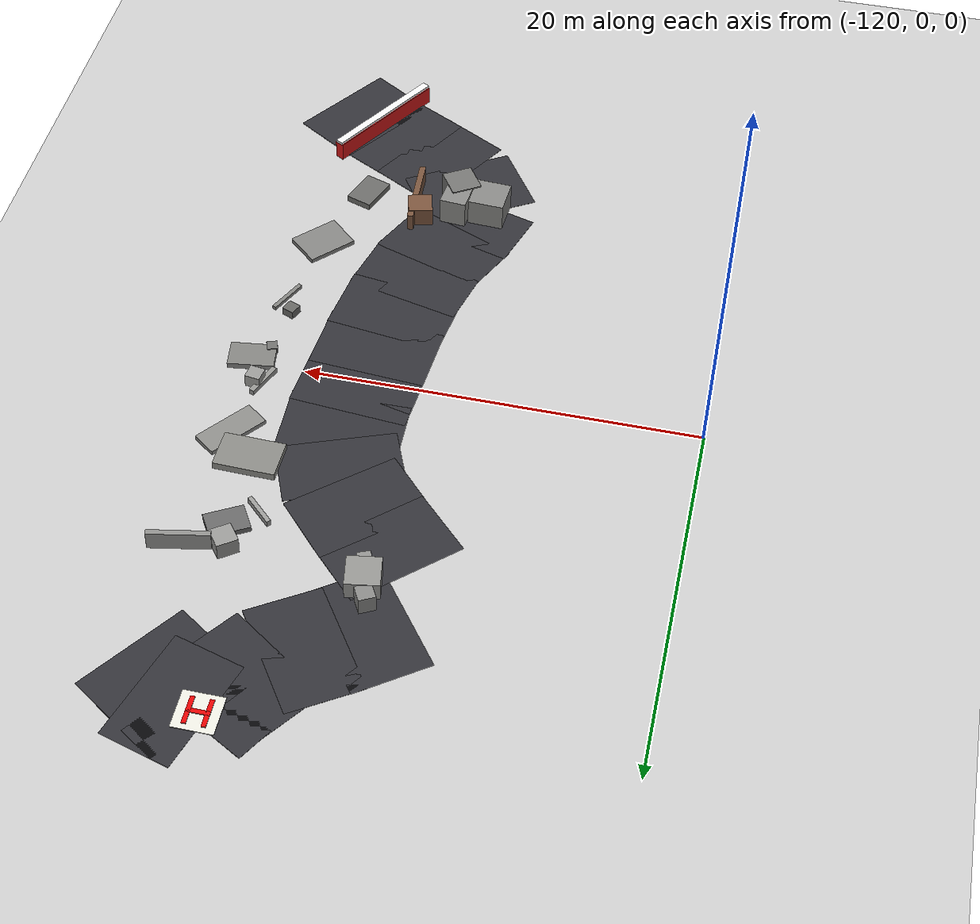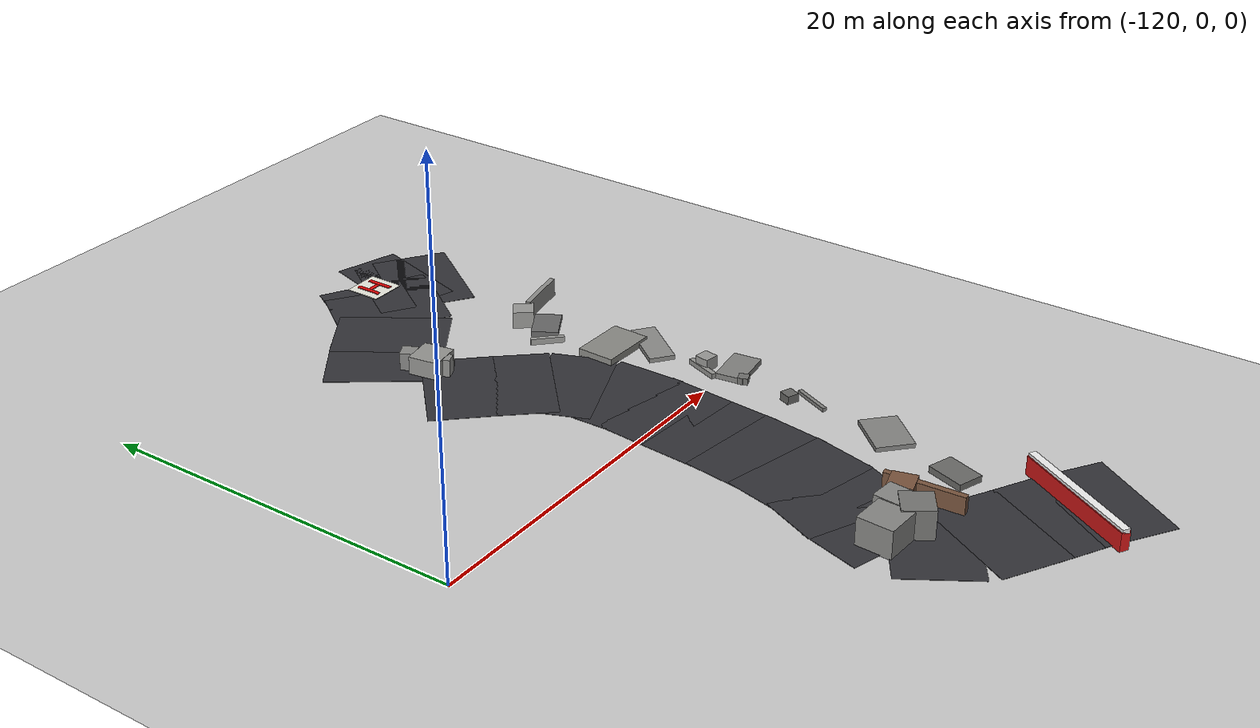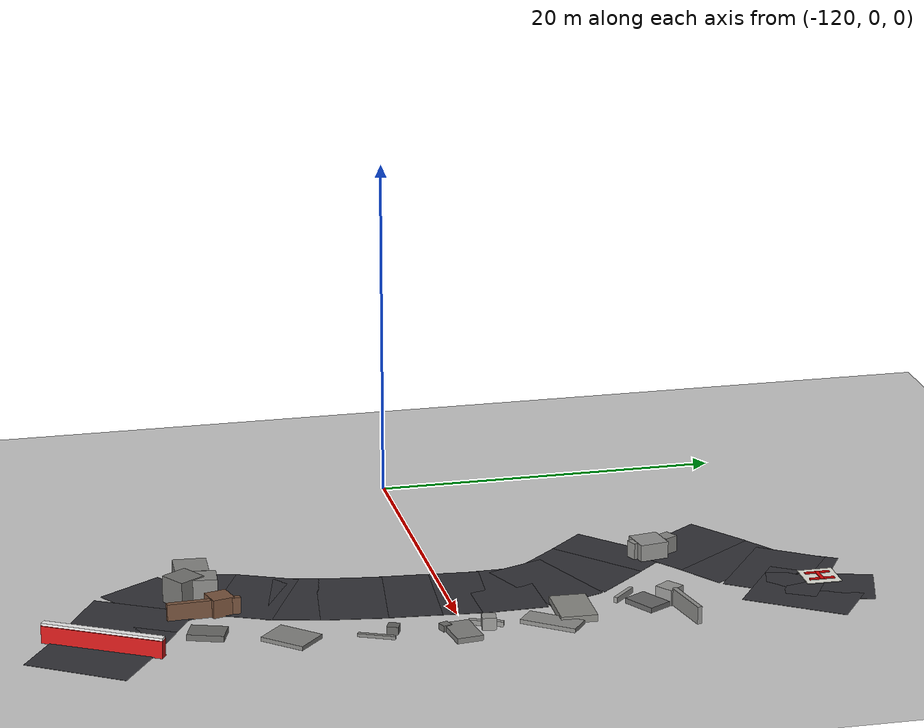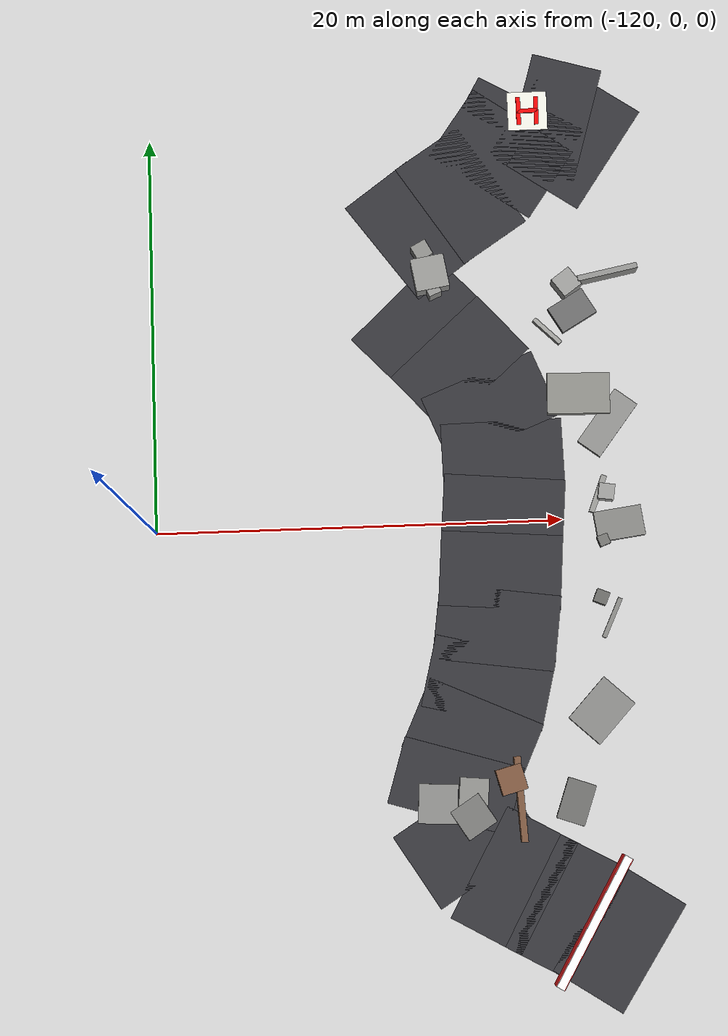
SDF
<sdf version="1.6">
 <world name="navitas_arena">
  <model name="ground_plane">
   <static>true</static>
   <link name="link">
    <collision name="collision">
     <geometry><plane><normal>0 0 1</normal><size>400 400</size></plane></geometry>
     <surface><friction><ode><mu>0.8</mu><mu2>0.8</mu2></ode></friction></surface>
    </collision>
    <visual name="visual">
     <cast_shadows>false</cast_shadows>
     <geometry><plane><normal>0 0 1</normal><size>400 400</size></plane></geometry>
     <material>
      <script><uri>file://media/materials/scripts/gazebo.material</uri><name>Gazebo/Grey</name></script>
     </material>
    </visual>
   </link>
  </model>
  <model name="road_kolay_1_1">
   <static>true</static>
   <pose>-98.136 -20.320 0.040 0 0 2.562</pose>
   <link name="link">
    <collision name="col"><geometry><box><size>3.894 6.000 0.020</size></box></geometry></collision>
    <visual name="vis">
     <geometry><box><size>3.894 6.000 0.020</size></box></geometry>
     <material><ambient>0.20 0.20 0.22 1</ambient><diffuse>0.20 0.20 0.22 1</diffuse></material>
    </visual>
   </link>
  </model>
  <model name="road_kolay_1_2">
   <static>true</static>
   <pose>-100.596 -18.833 0.040 0 0 2.637</pose>
   <link name="link">
    <collision name="col"><geometry><box><size>3.659 6.000 0.020</size></box></geometry></collision>
    <visual name="vis">
     <geometry><box><size>3.659 6.000 0.020</size></box></geometry>
     <material><ambient>0.20 0.20 0.22 1</ambient><diffuse>0.20 0.20 0.22 1</diffuse></material>
    </visual>
   </link>
  </model>
  <model name="road_kolay_1_3">
   <static>true</static>
   <pose>-103.075 -17.444 0.040 0 0 2.625</pose>
   <link name="link">
    <collision name="col"><geometry><box><size>3.823 6.000 0.020</size></box></geometry></collision>
    <visual name="vis">
     <geometry><box><size>3.823 6.000 0.020</size></box></geometry>
     <material><ambient>0.20 0.20 0.22 1</ambient><diffuse>0.20 0.20 0.22 1</diffuse></material>
    </visual>
   </link>
  </model>
  <model name="road_kolay_1_4">
   <static>true</static>
   <pose>-105.210 -15.350 0.040 0 0 2.133</pose>
   <link name="link">
    <collision name="col"><geometry><box><size>4.143 6.000 0.020</size></box></geometry></collision>
    <visual name="vis">
     <geometry><box><size>4.143 6.000 0.020</size></box></geometry>
     <material><ambient>0.20 0.20 0.22 1</ambient><diffuse>0.20 0.20 0.22 1</diffuse></material>
    </visual>
   </link>
  </model>
  <model name="road_kolay_1_5">
   <static>true</static>
   <pose>-105.721 -12.817 0.040 0 0 1.276</pose>
   <link name="link">
    <collision name="col"><geometry><box><size>3.327 6.000 0.020</size></box></geometry></collision>
    <visual name="vis">
     <geometry><box><size>3.327 6.000 0.020</size></box></geometry>
     <material><ambient>0.20 0.20 0.22 1</ambient><diffuse>0.20 0.20 0.22 1</diffuse></material>
    </visual>
   </link>
  </model>
  <model name="road_kolay_1_6">
   <static>true</static>
   <pose>-104.809 -10.426 0.040 0 0 1.144</pose>
   <link name="link">
    <collision name="col"><geometry><box><size>3.603 6.000 0.020</size></box></geometry></collision>
    <visual name="vis">
     <geometry><box><size>3.603 6.000 0.020</size></box></geometry>
     <material><ambient>0.20 0.20 0.22 1</ambient><diffuse>0.20 0.20 0.22 1</diffuse></material>
    </visual>
   </link>
  </model>
  <model name="road_kolay_1_7">
   <static>true</static>
   <pose>-103.930 -7.898 0.040 0 0 1.329</pose>
   <link name="link">
    <collision name="col"><geometry><box><size>3.574 6.000 0.020</size></box></geometry></collision>
    <visual name="vis">
     <geometry><box><size>3.574 6.000 0.020</size></box></geometry>
     <material><ambient>0.20 0.20 0.22 1</ambient><diffuse>0.20 0.20 0.22 1</diffuse></material>
    </visual>
   </link>
  </model>
  <model name="road_kolay_1_8">
   <static>true</static>
   <pose>-103.414 -5.200 0.040 0 0 1.432</pose>
   <link name="link">
    <collision name="col"><geometry><box><size>3.727 6.000 0.020</size></box></geometry></collision>
    <visual name="vis">
     <geometry><box><size>3.727 6.000 0.020</size></box></geometry>
     <material><ambient>0.20 0.20 0.22 1</ambient><diffuse>0.20 0.20 0.22 1</diffuse></material>
    </visual>
   </link>
  </model>
  <model name="road_kolay_1_9">
   <static>true</static>
   <pose>-103.110 -2.400 0.040 0 0 1.493</pose>
   <link name="link">
    <collision name="col"><geometry><box><size>3.708 6.000 0.020</size></box></geometry></collision>
    <visual name="vis">
     <geometry><box><size>3.708 6.000 0.020</size></box></geometry>
     <material><ambient>0.20 0.20 0.22 1</ambient><diffuse>0.20 0.20 0.22 1</diffuse></material>
    </visual>
   </link>
  </model>
  <model name="road_kolay_1_10">
   <static>true</static>
   <pose>-102.878 0.400 0.040 0 0 1.483</pose>
   <link name="link">
    <collision name="col"><geometry><box><size>3.711 6.000 0.020</size></box></geometry></collision>
    <visual name="vis">
     <geometry><box><size>3.711 6.000 0.020</size></box></geometry>
     <material><ambient>0.20 0.20 0.22 1</ambient><diffuse>0.20 0.20 0.22 1</diffuse></material>
    </visual>
   </link>
  </model>
  <model name="road_kolay_1_11">
   <static>true</static>
   <pose>-102.781 3.200 0.040 0 0 1.590</pose>
   <link name="link">
    <collision name="col"><geometry><box><size>3.701 6.000 0.020</size></box></geometry></collision>
    <visual name="vis">
     <geometry><box><size>3.701 6.000 0.020</size></box></geometry>
     <material><ambient>0.20 0.20 0.22 1</ambient><diffuse>0.20 0.20 0.22 1</diffuse></material>
    </visual>
   </link>
  </model>
  <model name="road_kolay_1_12">
   <static>true</static>
   <pose>-103.290 5.811 0.040 0 0 1.950</pose>
   <link name="link">
    <collision name="col"><geometry><box><size>3.507 6.000 0.020</size></box></geometry></collision>
    <visual name="vis">
     <geometry><box><size>3.507 6.000 0.020</size></box></geometry>
     <material><ambient>0.20 0.20 0.22 1</ambient><diffuse>0.20 0.20 0.22 1</diffuse></material>
    </visual>
   </link>
  </model>
  <model name="road_kolay_1_13">
   <static>true</static>
   <pose>-104.719 8.077 0.040 0 0 2.302</pose>
   <link name="link">
    <collision name="col"><geometry><box><size>3.734 6.000 0.020</size></box></geometry></collision>
    <visual name="vis">
     <geometry><box><size>3.734 6.000 0.020</size></box></geometry>
     <material><ambient>0.20 0.20 0.22 1</ambient><diffuse>0.20 0.20 0.22 1</diffuse></material>
    </visual>
   </link>
  </model>
  <model name="road_kolay_1_14">
   <static>true</static>
   <pose>-106.637 10.157 0.040 0 0 2.329</pose>
   <link name="link">
    <collision name="col"><geometry><box><size>3.725 6.000 0.020</size></box></geometry></collision>
    <visual name="vis">
     <geometry><box><size>3.725 6.000 0.020</size></box></geometry>
     <material><ambient>0.20 0.20 0.22 1</ambient><diffuse>0.20 0.20 0.22 1</diffuse></material>
    </visual>
   </link>
  </model>
  <model name="road_kolay_1_16">
   <static>true</static>
   <pose>-106.818 14.984 0.040 0 0 0.632</pose>
   <link name="link">
    <collision name="col"><geometry><box><size>3.976 6.000 0.020</size></box></geometry></collision>
    <visual name="vis">
     <geometry><box><size>3.976 6.000 0.020</size></box></geometry>
     <material><ambient>0.20 0.20 0.22 1</ambient><diffuse>0.20 0.20 0.22 1</diffuse></material>
    </visual>
   </link>
  </model>
  <model name="road_kolay_1_17">
   <static>true</static>
   <pose>-104.358 16.696 0.040 0 0 0.583</pose>
   <link name="link">
    <collision name="col"><geometry><box><size>3.820 6.000 0.020</size></box></geometry></collision>
    <visual name="vis">
     <geometry><box><size>3.820 6.000 0.020</size></box></geometry>
     <material><ambient>0.20 0.20 0.22 1</ambient><diffuse>0.20 0.20 0.22 1</diffuse></material>
    </visual>
   </link>
  </model>
  <model name="road_kolay_1_18">
   <static>true</static>
   <pose>-102.217 18.815 0.040 0 0 0.959</pose>
   <link name="link">
    <collision name="col"><geometry><box><size>4.113 6.000 0.020</size></box></geometry></collision>
    <visual name="vis">
     <geometry><box><size>4.113 6.000 0.020</size></box></geometry>
     <material><ambient>0.20 0.20 0.22 1</ambient><diffuse>0.20 0.20 0.22 1</diffuse></material>
    </visual>
   </link>
  </model>
  <model name="road_kolay_1_19">
   <static>true</static>
   <pose>-101.046 20.565 0.040 0 0 1.054</pose>
   <link name="link">
    <collision name="col"><geometry><box><size>1.901 6.000 0.020</size></box></geometry></collision>
    <visual name="vis">
     <geometry><box><size>1.901 6.000 0.020</size></box></geometry>
     <material><ambient>0.20 0.20 0.22 1</ambient><diffuse>0.20 0.20 0.22 1</diffuse></material>
    </visual>
   </link>
  </model>
  <model name="road_kolay_2_17">
   <static>true</static>
   <pose>-98.530 19.461 0.040 0 0 2.541</pose>
   <link name="link">
    <collision name="col"><geometry><box><size>4.203 6.000 0.020</size></box></geometry></collision>
    <visual name="vis">
     <geometry><box><size>4.203 6.000 0.020</size></box></geometry>
     <material><ambient>0.20 0.20 0.22 1</ambient><diffuse>0.20 0.20 0.22 1</diffuse></material>
    </visual>
   </link>
  </model>
  <model name="road_kolay_2_18">
   <static>true</static>
   <pose>-100.345 20.697 0.040 0 0 2.553</pose>
   <link name="link">
    <collision name="col"><geometry><box><size>1.990 6.000 0.020</size></box></geometry></collision>
    <visual name="vis">
     <geometry><box><size>1.990 6.000 0.020</size></box></geometry>
     <material><ambient>0.20 0.20 0.22 1</ambient><diffuse>0.20 0.20 0.22 1</diffuse></material>
    </visual>
   </link>
  </model>
  <model name="road_kolay_3_28">
   <static>true</static>
   <pose>-99.500 20.619 0.040 0 0 2.857</pose>
   <link name="link">
    <collision name="col"><geometry><box><size>3.607 6.000 0.020</size></box></geometry></collision>
    <visual name="vis">
     <geometry><box><size>3.607 6.000 0.020</size></box></geometry>
     <material><ambient>0.20 0.20 0.22 1</ambient><diffuse>0.20 0.20 0.22 1</diffuse></material>
    </visual>
   </link>
  </model>
  <model name="bar_kolay_1">
   <static>true</static>
   <pose>-99.388 -19.500 0.500 0 0 4.180</pose>
   <link name="link">
    <collision name="col"><geometry><box><size>7.000 0.500 1.000</size></box></geometry></collision>
    <visual name="vis">
     <geometry><box><size>7.000 0.500 1.000</size></box></geometry>
     <material><ambient>0.85 0.10 0.10 1</ambient><diffuse>0.85 0.10 0.10 1</diffuse></material>
    </visual>
   </link>
  </model>
  <model name="bar_kolay_1b">
   <static>true</static>
   <pose>-99.388 -19.500 1.000 0 0 4.180</pose>
   <link name="link">
    <collision name="col"><geometry><box><size>7.000 0.400 0.300</size></box></geometry></collision>
    <visual name="vis">
     <geometry><box><size>7.000 0.400 0.300</size></box></geometry>
     <material><ambient>0.95 0.95 0.95 1</ambient><diffuse>0.95 0.95 0.95 1</diffuse></material>
    </visual>
   </link>
  </model>
  <model name="blk_kolay_1_0_1">
   <static>true</static>
   <pose>-102.637 -13.566 0.500 0 0 1.623</pose>
   <link name="link">
    <collision name="col"><geometry><box><size>4.092 0.322 1.000</size></box></geometry></collision>
    <visual name="vis">
     <geometry><box><size>4.092 0.322 1.000</size></box></geometry>
     <material><ambient>0.47 0.33 0.24 1</ambient><diffuse>0.47 0.33 0.24 1</diffuse></material>
    </visual>
   </link>
  </model>
  <model name="blk_kolay_1_0_2">
   <static>true</static>
   <pose>-103.046 -12.622 0.527 0 0 0.261</pose>
   <link name="link">
    <collision name="col"><geometry><box><size>1.270 1.270 1.055</size></box></geometry></collision>
    <visual name="vis">
     <geometry><box><size>1.270 1.270 1.055</size></box></geometry>
     <material><ambient>0.48 0.33 0.24 1</ambient><diffuse>0.48 0.33 0.24 1</diffuse></material>
    </visual>
   </link>
  </model>
  <model name="blk_kolay_1_0_3">
   <static>true</static>
   <pose>-106.629 -13.651 0.759 0 0 3.084</pose>
   <link name="link">
    <collision name="col"><geometry><box><size>1.884 1.884 1.518</size></box></geometry></collision>
    <visual name="vis">
     <geometry><box><size>1.884 1.884 1.518</size></box></geometry>
     <material><ambient>0.53 0.53 0.52 1</ambient><diffuse>0.53 0.53 0.52 1</diffuse></material>
    </visual>
   </link>
  </model>
  <model name="blk_kolay_1_0_7">
   <static>true</static>
   <pose>-104.902 -13.171 0.762 0 0 1.475</pose>
   <link name="link">
    <collision name="col"><geometry><box><size>1.395 1.395 1.524</size></box></geometry></collision>
    <visual name="vis">
     <geometry><box><size>1.395 1.395 1.524</size></box></geometry>
     <material><ambient>0.54 0.54 0.53 1</ambient><diffuse>0.54 0.54 0.53 1</diffuse></material>
    </visual>
   </link>
  </model>
  <model name="blk_kolay_1_0_8">
   <static>true</static>
   <pose>-104.958 -14.323 0.793 0 0 2.140</pose>
   <link name="link">
    <collision name="col"><geometry><box><size>1.617 1.617 1.587</size></box></geometry></collision>
    <visual name="vis">
     <geometry><box><size>1.617 1.617 1.587</size></box></geometry>
     <material><ambient>0.46 0.46 0.45 1</ambient><diffuse>0.46 0.46 0.45 1</diffuse></material>
    </visual>
   </link>
  </model>
  <model name="blk_kolay_1_1_3">
   <static>true</static>
   <pose>-106.069 12.511 0.512 0 0 0.165</pose>
   <link name="link">
    <collision name="col"><geometry><box><size>1.670 1.670 1.024</size></box></geometry></collision>
    <visual name="vis">
     <geometry><box><size>1.670 1.670 1.024</size></box></geometry>
     <material><ambient>0.58 0.58 0.57 1</ambient><diffuse>0.58 0.58 0.57 1</diffuse></material>
    </visual>
   </link>
  </model>
  <model name="blk_kolay_1_1_6">
   <static>true</static>
   <pose>-106.433 13.667 0.500 0 0 2.064</pose>
   <link name="link">
    <collision name="col"><geometry><box><size>0.833 0.833 1.000</size></box></geometry></collision>
    <visual name="vis">
     <geometry><box><size>0.833 0.833 1.000</size></box></geometry>
     <material><ambient>0.54 0.54 0.53 1</ambient><diffuse>0.54 0.54 0.53 1</diffuse></material>
    </visual>
   </link>
  </model>
  <model name="blk_kolay_1_1_7">
   <static>true</static>
   <pose>-105.944 11.719 0.500 0 0 0.400</pose>
   <link name="link">
    <collision name="col"><geometry><box><size>0.666 0.666 1.000</size></box></geometry></collision>
    <visual name="vis">
     <geometry><box><size>0.666 0.666 1.000</size></box></geometry>
     <material><ambient>0.57 0.57 0.56 1</ambient><diffuse>0.57 0.57 0.56 1</diffuse></material>
    </visual>
   </link>
  </model>
  <model name="deb_kolay_9">
   <static>true</static>
   <pose>-99.016 10.505 0.150 0 0 0.529</pose>
   <link name="link">
    <collision name="col"><geometry><box><size>2.007 1.430 0.300</size></box></geometry></collision>
    <visual name="vis">
     <geometry><box><size>2.007 1.430 0.300</size></box></geometry>
     <material><ambient>0.41 0.41 0.41 1</ambient><diffuse>0.41 0.41 0.41 1</diffuse></material>
    </visual>
   </link>
  </model>
  <model name="deb_kolay_26">
   <static>true</static>
   <pose>-98.247 -3.914 0.225 0 0 1.171</pose>
   <link name="link">
    <collision name="col"><geometry><box><size>0.654 0.654 0.451</size></box></geometry></collision>
    <visual name="vis">
     <geometry><box><size>0.654 0.654 0.451</size></box></geometry>
     <material><ambient>0.40 0.40 0.39 1</ambient><diffuse>0.40 0.40 0.39 1</diffuse></material>
    </visual>
   </link>
  </model>
  <model name="deb_kolay_37">
   <static>true</static>
   <pose>-98.001 -1.098 0.181 0 0 0.354</pose>
   <link name="link">
    <collision name="col"><geometry><box><size>0.533 0.533 0.362</size></box></geometry></collision>
    <visual name="vis">
     <geometry><box><size>0.533 0.533 0.362</size></box></geometry>
     <material><ambient>0.44 0.44 0.43 1</ambient><diffuse>0.44 0.44 0.43 1</diffuse></material>
    </visual>
   </link>
  </model>
  <model name="deb_kolay_41">
   <static>true</static>
   <pose>-100.306 9.494 0.165 0 0 2.367</pose>
   <link name="link">
    <collision name="col"><geometry><box><size>1.770 0.229 0.330</size></box></geometry></collision>
    <visual name="vis">
     <geometry><box><size>1.770 0.229 0.330</size></box></geometry>
     <material><ambient>0.61 0.61 0.60 1</ambient><diffuse>0.61 0.61 0.60 1</diffuse></material>
    </visual>
   </link>
  </model>
  <model name="deb_kolay_45">
   <static>true</static>
   <pose>-97.528 4.759 0.121 0 0 0.919</pose>
   <link name="link">
    <collision name="col"><geometry><box><size>3.251 1.364 0.242</size></box></geometry></collision>
    <visual name="vis">
     <geometry><box><size>3.251 1.364 0.242</size></box></geometry>
     <material><ambient>0.55 0.55 0.54 1</ambient><diffuse>0.55 0.55 0.54 1</diffuse></material>
    </visual>
   </link>
  </model>
  <model name="deb_kolay_47">
   <static>true</static>
   <pose>-98.482 -9.450 0.120 0 0 0.823</pose>
   <link name="link">
    <collision name="col"><geometry><box><size>2.649 1.993 0.240</size></box></geometry></collision>
    <visual name="vis">
     <geometry><box><size>2.649 1.993 0.240</size></box></geometry>
     <material><ambient>0.52 0.52 0.51 1</ambient><diffuse>0.52 0.52 0.51 1</diffuse></material>
    </visual>
   </link>
  </model>
  <model name="deb_kolay_56">
   <static>true</static>
   <pose>-99.286 11.833 0.456 0 0 0.630</pose>
   <link name="link">
    <collision name="col"><geometry><box><size>1.083 1.083 0.912</size></box></geometry></collision>
    <visual name="vis">
     <geometry><box><size>1.083 1.083 0.912</size></box></geometry>
     <material><ambient>0.60 0.60 0.59 1</ambient><diffuse>0.60 0.60 0.59 1</diffuse></material>
    </visual>
   </link>
  </model>
  <model name="deb_kolay_60">
   <static>true</static>
   <pose>-99.929 -13.788 0.173 0 0 1.233</pose>
   <link name="link">
    <collision name="col"><geometry><box><size>2.043 1.408 0.346</size></box></geometry></collision>
    <visual name="vis">
     <geometry><box><size>2.043 1.408 0.346</size></box></geometry>
     <material><ambient>0.42 0.42 0.41 1</ambient><diffuse>0.42 0.42 0.41 1</diffuse></material>
    </visual>
   </link>
  </model>
  <model name="deb_kolay_97">
   <static>true</static>
   <pose>-98.909 6.274 0.197 0 0 3.115</pose>
   <link name="link">
    <collision name="col"><geometry><box><size>3.102 2.050 0.393</size></box></geometry></collision>
    <visual name="vis">
     <geometry><box><size>3.102 2.050 0.393</size></box></geometry>
     <material><ambient>0.54 0.54 0.52 1</ambient><diffuse>0.54 0.54 0.52 1</diffuse></material>
    </visual>
   </link>
  </model>
  <model name="deb_kolay_98">
   <static>true</static>
   <pose>-97.186 -0.302 0.154 0 0 0.134</pose>
   <link name="link">
    <collision name="col"><geometry><box><size>2.356 1.509 0.307</size></box></geometry></collision>
    <visual name="vis">
     <geometry><box><size>2.356 1.509 0.307</size></box></geometry>
     <material><ambient>0.51 0.51 0.50 1</ambient><diffuse>0.51 0.51 0.50 1</diffuse></material>
    </visual>
   </link>
  </model>
  <model name="deb_kolay_117">
   <static>true</static>
   <pose>-97.748 -4.932 0.097 0 0 1.135</pose>
   <link name="link">
    <collision name="col"><geometry><box><size>2.096 0.215 0.194</size></box></geometry></collision>
    <visual name="vis">
     <geometry><box><size>2.096 0.215 0.194</size></box></geometry>
     <material><ambient>0.51 0.51 0.50 1</ambient><diffuse>0.51 0.51 0.50 1</diffuse></material>
    </visual>
   </link>
  </model>
  <model name="deb_kolay_119">
   <static>true</static>
   <pose>-97.786 1.265 0.349 0 0 2.991</pose>
   <link name="link">
    <collision name="col"><geometry><box><size>0.777 0.777 0.697</size></box></geometry></collision>
    <visual name="vis">
     <geometry><box><size>0.777 0.777 0.697</size></box></geometry>
     <material><ambient>0.60 0.60 0.59 1</ambient><diffuse>0.60 0.60 0.59 1</diffuse></material>
    </visual>
   </link>
  </model>
  <model name="deb_kolay_127">
   <static>true</static>
   <pose>-98.172 1.216 0.142 0 0 1.202</pose>
   <link name="link">
    <collision name="col"><geometry><box><size>1.929 0.279 0.284</size></box></geometry></collision>
    <visual name="vis">
     <geometry><box><size>1.929 0.279 0.284</size></box></geometry>
     <material><ambient>0.58 0.58 0.57 1</ambient><diffuse>0.58 0.58 0.57 1</diffuse></material>
    </visual>
   </link>
  </model>
  <model name="chic_kolay_4">
   <static>true</static>
   <pose>-97.240 12.251 0.500 0 0 0.196</pose>
   <link name="link">
    <collision name="col"><geometry><box><size>3.039 0.277 1.000</size></box></geometry></collision>
    <visual name="vis">
     <geometry><box><size>3.039 0.277 1.000</size></box></geometry>
     <material><ambient>0.56 0.56 0.55 1</ambient><diffuse>0.56 0.56 0.55 1</diffuse></material>
    </visual>
   </link>
  </model>
  <model name="hbpad_kolay">
   <static>true</static>
   <pose>-100.799 21.000 0.070 0 0 0.000</pose>
   <link name="link">
    <collision name="col"><geometry><box><size>2.000 2.000 0.040</size></box></geometry></collision>
    <visual name="vis">
     <geometry><box><size>2.000 2.000 0.040</size></box></geometry>
     <material><ambient>0.92 0.92 0.88 1</ambient><diffuse>0.92 0.92 0.88 1</diffuse></material>
    </visual>
   </link>
  </model>
  <model name="H_kolay_l">
   <static>true</static>
   <pose>-101.249 21.000 0.100 0 0 0.000</pose>
   <link name="link">
    <collision name="col"><geometry><box><size>0.220 1.450 0.080</size></box></geometry></collision>
    <visual name="vis">
     <geometry><box><size>0.220 1.450 0.080</size></box></geometry>
     <material><ambient>0.90 0.02 0.02 1</ambient><diffuse>0.90 0.02 0.02 1</diffuse></material>
    </visual>
   </link>
  </model>
  <model name="H_kolay_r">
   <static>true</static>
   <pose>-100.349 21.000 0.100 0 0 0.000</pose>
   <link name="link">
    <collision name="col"><geometry><box><size>0.220 1.450 0.080</size></box></geometry></collision>
    <visual name="vis">
     <geometry><box><size>0.220 1.450 0.080</size></box></geometry>
     <material><ambient>0.90 0.02 0.02 1</ambient><diffuse>0.90 0.02 0.02 1</diffuse></material>
    </visual>
   </link>
  </model>
  <model name="H_kolay_b">
   <static>true</static>
   <pose>-100.799 21.000 0.100 0 0 0.000</pose>
   <link name="link">
    <collision name="col"><geometry><box><size>1.100 0.220 0.080</size></box></geometry></collision>
    <visual name="vis">
     <geometry><box><size>1.100 0.220 0.080</size></box></geometry>
     <material><ambient>0.90 0.02 0.02 1</ambient><diffuse>0.90 0.02 0.02 1</diffuse></material>
    </visual>
   </link>
  </model>
 </world>
</sdf>
